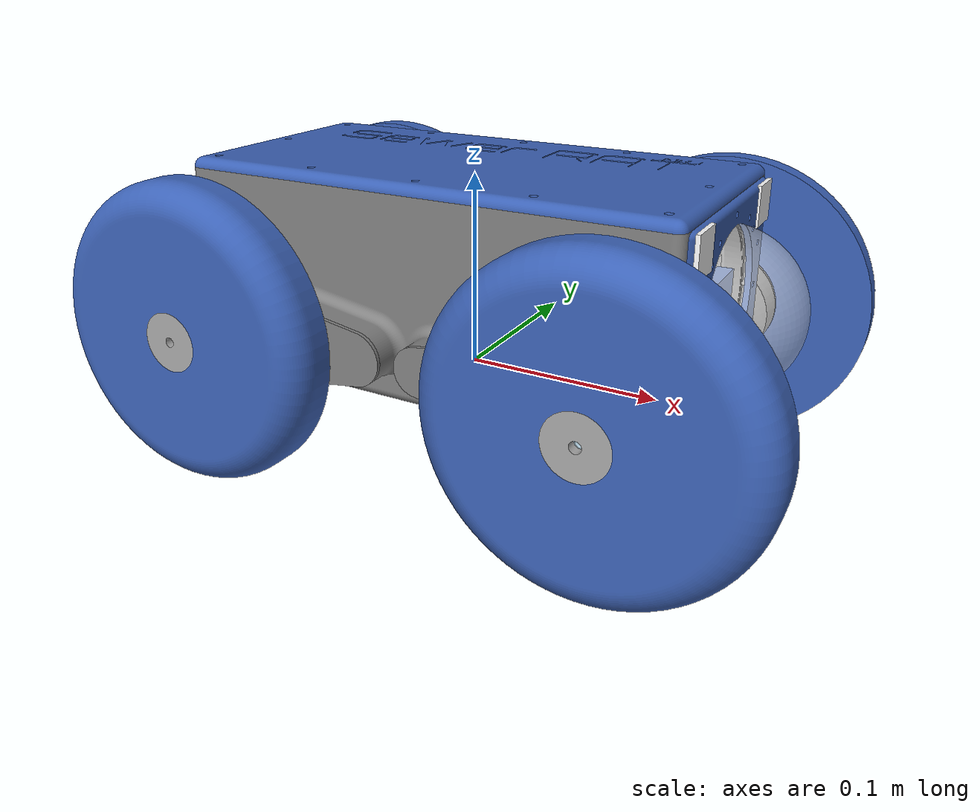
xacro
<?xml version="1.0" ?>

<robot name="inspection_bot" xmlns:xacro="http://www.ros.org/wiki/xacro">

  <xacro:include filename="$(find description)/urdf/ign.xacro" />
  <xacro:include filename="$(find description)/urdf/ign_ros2_control.xacro" />

  <link name="base_link">
    <inertial>
      <origin xyz="-0.00411556 1.05443e-07 0.0423144" rpy="0 0 0"/>
      <mass value="5.10018"/>
      <inertia ixx="0.0179618" ixy="6.87201e-06" ixz="-7.24689e-05" iyy="0.0363852" iyz="3.01745e-06" izz="0.042854"/>
    </inertial>
    <!-- Part wheel_cover -->
    <visual>
      <origin xyz="-0 0 0" rpy="0 0 0"/>
      <geometry>
        <mesh filename="file://$(find description)/meshes/wheel_cover.stl"/>
      </geometry>
      <material name="wheel_cover_material">
        <color rgba="0.647059 0.647059 0.647059 1"/>
      </material>
    </visual>
    <collision>
      <origin xyz="-0 0 0" rpy="0 0 0"/>
      <geometry>
        <mesh filename="file://$(find description)/meshes/wheel_cover.stl"/>
      </geometry>
    </collision>
    <!-- Part esc -->
    <visual>
      <origin xyz="-0 0 0" rpy="0 0 0"/>
      <geometry>
        <mesh filename="file://$(find description)/meshes/esc.stl"/>
      </geometry>
      <material name="esc_material">
        <color rgba="0.231373 0.380392 0.705882 1"/>
      </material>
    </visual>
    <collision>
      <origin xyz="-0 0 0" rpy="0 0 0"/>
      <geometry>
        <mesh filename="file://$(find description)/meshes/esc.stl"/>
      </geometry>
    </collision>
    <!-- Part 60teeth_2gt_5mm_pulley -->
    <visual>
      <origin xyz="-0 0 0" rpy="0 0 0"/>
      <geometry>
        <mesh filename="file://$(find description)/meshes/60teeth_2gt_5mm_pulley.stl"/>
      </geometry>
      <material name="60teeth_2gt_5mm_pulley_material">
        <color rgba="0.768627 0.886275 0.952941 1"/>
      </material>
    </visual>
    <collision>
      <origin xyz="-0 0 0" rpy="0 0 0"/>
      <geometry>
        <mesh filename="file://$(find description)/meshes/60teeth_2gt_5mm_pulley.stl"/>
      </geometry>
    </collision>
    <!-- Part esc_2 -->
    <visual>
      <origin xyz="-0 0 0" rpy="0 0 0"/>
      <geometry>
        <mesh filename="file://$(find description)/meshes/esc__2.stl"/>
      </geometry>
      <material name="esc_2_material">
        <color rgba="0.972549 0.529412 0.00392157 1"/>
      </material>
    </visual>
    <collision>
      <origin xyz="-0 0 0" rpy="0 0 0"/>
      <geometry>
        <mesh filename="file://$(find description)/meshes/esc__2.stl"/>
      </geometry>
    </collision>
    <!-- Part 20teeth_2gt_3mm_pulley -->
    <visual>
      <origin xyz="-0 0 0" rpy="0 0 0"/>
      <geometry>
        <mesh filename="file://$(find description)/meshes/20teeth_2gt_3mm_pulley.stl"/>
      </geometry>
      <material name="20teeth_2gt_3mm_pulley_material">
        <color rgba="0.917647 0.917647 0.917647 1"/>
      </material>
    </visual>
    <collision>
      <origin xyz="-0 0 0" rpy="0 0 0"/>
      <geometry>
        <mesh filename="file://$(find description)/meshes/20teeth_2gt_3mm_pulley.stl"/>
      </geometry>
    </collision>
    <!-- Part 60teeth_2gt_5mm_pulley_2 -->
    <visual>
      <origin xyz="-0 0 0" rpy="0 0 0"/>
      <geometry>
        <mesh filename="file://$(find description)/meshes/60teeth_2gt_5mm_pulley__2.stl"/>
      </geometry>
      <material name="60teeth_2gt_5mm_pulley_2_material">
        <color rgba="0.768627 0.886275 0.952941 1"/>
      </material>
    </visual>
    <collision>
      <origin xyz="-0 0 0" rpy="0 0 0"/>
      <geometry>
        <mesh filename="file://$(find description)/meshes/60teeth_2gt_5mm_pulley__2.stl"/>
      </geometry>
    </collision>
    <!-- Part pulley_cover_plate -->
    <visual>
      <origin xyz="-0 0 0" rpy="0 0 0"/>
      <geometry>
        <mesh filename="file://$(find description)/meshes/pulley_cover_plate.stl"/>
      </geometry>
      <material name="pulley_cover_plate_material">
        <color rgba="0.498039 0.498039 0.498039 1"/>
      </material>
    </visual>
    <collision>
      <origin xyz="-0 0 0" rpy="0 0 0"/>
      <geometry>
        <mesh filename="file://$(find description)/meshes/pulley_cover_plate.stl"/>
      </geometry>
    </collision>
    <!-- Part esc_3 -->
    <visual>
      <origin xyz="-0 0 0" rpy="0 0 0"/>
      <geometry>
        <mesh filename="file://$(find description)/meshes/esc__3.stl"/>
      </geometry>
      <material name="esc_3_material">
        <color rgba="0.768627 0.886275 0.952941 1"/>
      </material>
    </visual>
    <collision>
      <origin xyz="-0 0 0" rpy="0 0 0"/>
      <geometry>
        <mesh filename="file://$(find description)/meshes/esc__3.stl"/>
      </geometry>
    </collision>
    <!-- Part wheel_cover_2 -->
    <visual>
      <origin xyz="-0 0 0" rpy="0 0 0"/>
      <geometry>
        <mesh filename="file://$(find description)/meshes/wheel_cover__2.stl"/>
      </geometry>
      <material name="wheel_cover_2_material">
        <color rgba="0.647059 0.647059 0.647059 1"/>
      </material>
    </visual>
    <collision>
      <origin xyz="-0 0 0" rpy="0 0 0"/>
      <geometry>
        <mesh filename="file://$(find description)/meshes/wheel_cover__2.stl"/>
      </geometry>
    </collision>
    <!-- Part pulley_cover_plate_2 -->
    <visual>
      <origin xyz="-0 0 0" rpy="0 0 0"/>
      <geometry>
        <mesh filename="file://$(find description)/meshes/pulley_cover_plate__2.stl"/>
      </geometry>
      <material name="pulley_cover_plate_2_material">
        <color rgba="0.498039 0.498039 0.498039 1"/>
      </material>
    </visual>
    <collision>
      <origin xyz="-0 0 0" rpy="0 0 0"/>
      <geometry>
        <mesh filename="file://$(find description)/meshes/pulley_cover_plate__2.stl"/>
      </geometry>
    </collision>
    <!-- Part rear_right_motor -->
    <visual>
      <origin xyz="-0 0 0" rpy="0 0 0"/>
      <geometry>
        <mesh filename="file://$(find description)/meshes/rear_right_motor.stl"/>
      </geometry>
      <material name="rear_right_motor_material">
        <color rgba="0.647059 0.647059 0.647059 1"/>
      </material>
    </visual>
    <collision>
      <origin xyz="-0 0 0" rpy="0 0 0"/>
      <geometry>
        <mesh filename="file://$(find description)/meshes/rear_right_motor.stl"/>
      </geometry>
    </collision>
    <!-- Part pulley_cover_plate_3 -->
    <visual>
      <origin xyz="-0 0 0" rpy="0 0 0"/>
      <geometry>
        <mesh filename="file://$(find description)/meshes/pulley_cover_plate__3.stl"/>
      </geometry>
      <material name="pulley_cover_plate_3_material">
        <color rgba="0.498039 0.498039 0.498039 1"/>
      </material>
    </visual>
    <collision>
      <origin xyz="-0 0 0" rpy="0 0 0"/>
      <geometry>
        <mesh filename="file://$(find description)/meshes/pulley_cover_plate__3.stl"/>
      </geometry>
    </collision>
    <!-- Part 60teeth_2gt_5mm_pulley_3 -->
    <visual>
      <origin xyz="-0 0 0" rpy="0 0 0"/>
      <geometry>
        <mesh filename="file://$(find description)/meshes/60teeth_2gt_5mm_pulley__3.stl"/>
      </geometry>
      <material name="60teeth_2gt_5mm_pulley_3_material">
        <color rgba="0.972549 0.529412 0.00392157 1"/>
      </material>
    </visual>
    <collision>
      <origin xyz="-0 0 0" rpy="0 0 0"/>
      <geometry>
        <mesh filename="file://$(find description)/meshes/60teeth_2gt_5mm_pulley__3.stl"/>
      </geometry>
    </collision>
    <!-- Part pulleu_cover_plate -->
    <visual>
      <origin xyz="-0 0 0" rpy="0 0 0"/>
      <geometry>
        <mesh filename="file://$(find description)/meshes/pulleu_cover_plate.stl"/>
      </geometry>
      <material name="pulleu_cover_plate_material">
        <color rgba="0.498039 0.498039 0.498039 1"/>
      </material>
    </visual>
    <collision>
      <origin xyz="-0 0 0" rpy="0 0 0"/>
      <geometry>
        <mesh filename="file://$(find description)/meshes/pulleu_cover_plate.stl"/>
      </geometry>
    </collision>
    <!-- Part camera_dome -->
    <visual>
      <origin xyz="-0 0 0" rpy="0 0 0"/>
      <geometry>
        <mesh filename="file://$(find description)/meshes/camera_dome.stl"/>
      </geometry>
      <material name="camera_dome_material">
        <color rgba="0.901961 0.901961 0.901961 0.498039"/>
      </material>
    </visual>
    <collision>
      <origin xyz="-0 0 0" rpy="0 0 0"/>
      <geometry>
        <mesh filename="file://$(find description)/meshes/camera_dome.stl"/>
      </geometry>
    </collision>
    <!-- Part base_link -->
    <visual>
      <origin xyz="-0 0 0" rpy="0 0 0"/>
      <geometry>
        <mesh filename="file://$(find description)/meshes/base_link.stl"/>
      </geometry>
      <material name="base_link_material">
        <color rgba="0.498039 0.498039 0.498039 1"/>
      </material>
    </visual>
    <collision>
      <origin xyz="-0 0 0" rpy="0 0 0"/>
      <geometry>
        <mesh filename="file://$(find description)/meshes/base_link.stl"/>
      </geometry>
    </collision>
    <!-- Part 60teeth_2gt_5mm_pulley_4 -->
    <visual>
      <origin xyz="-0 0 0" rpy="0 0 0"/>
      <geometry>
        <mesh filename="file://$(find description)/meshes/60teeth_2gt_5mm_pulley__4.stl"/>
      </geometry>
      <material name="60teeth_2gt_5mm_pulley_4_material">
        <color rgba="0.972549 0.529412 0.00392157 1"/>
      </material>
    </visual>
    <collision>
      <origin xyz="-0 0 0" rpy="0 0 0"/>
      <geometry>
        <mesh filename="file://$(find description)/meshes/60teeth_2gt_5mm_pulley__4.stl"/>
      </geometry>
    </collision>
    <!-- Part lid -->
    <visual>
      <origin xyz="-0 0 0" rpy="0 0 0"/>
      <geometry>
        <mesh filename="file://$(find description)/meshes/lid.stl"/>
      </geometry>
      <material name="lid_material">
        <color rgba="0.231373 0.380392 0.705882 1"/>
      </material>
    </visual>
    <collision>
      <origin xyz="-0 0 0" rpy="0 0 0"/>
      <geometry>
        <mesh filename="file://$(find description)/meshes/lid.stl"/>
      </geometry>
    </collision>
    <!-- Part rear_left_motor -->
    <visual>
      <origin xyz="-0 0 0" rpy="0 0 0"/>
      <geometry>
        <mesh filename="file://$(find description)/meshes/rear_left_motor.stl"/>
      </geometry>
      <material name="rear_left_motor_material">
        <color rgba="0.917647 0.917647 0.917647 1"/>
      </material>
    </visual>
    <collision>
      <origin xyz="-0 0 0" rpy="0 0 0"/>
      <geometry>
        <mesh filename="file://$(find description)/meshes/rear_left_motor.stl"/>
      </geometry>
    </collision>
    <!-- Part front_left_motor -->
    <visual>
      <origin xyz="-0 0 0" rpy="0 0 0"/>
      <geometry>
        <mesh filename="file://$(find description)/meshes/front_left_motor.stl"/>
      </geometry>
      <material name="front_left_motor_material">
        <color rgba="0.768627 0.886275 0.952941 1"/>
      </material>
    </visual>
    <collision>
      <origin xyz="-0 0 0" rpy="0 0 0"/>
      <geometry>
        <mesh filename="file://$(find description)/meshes/front_left_motor.stl"/>
      </geometry>
    </collision>
    <!-- Part 20teeth_2gt_3mm_pulley_2 -->
    <visual>
      <origin xyz="-0 0 0" rpy="0 0 0"/>
      <geometry>
        <mesh filename="file://$(find description)/meshes/20teeth_2gt_3mm_pulley__2.stl"/>
      </geometry>
      <material name="20teeth_2gt_3mm_pulley_2_material">
        <color rgba="0.917647 0.917647 0.917647 1"/>
      </material>
    </visual>
    <collision>
      <origin xyz="-0 0 0" rpy="0 0 0"/>
      <geometry>
        <mesh filename="file://$(find description)/meshes/20teeth_2gt_3mm_pulley__2.stl"/>
      </geometry>
    </collision>
    <!-- Part cable_connector -->
    <visual>
      <origin xyz="-0 0 0" rpy="0 0 0"/>
      <geometry>
        <mesh filename="file://$(find description)/meshes/cable_connector.stl"/>
      </geometry>
      <material name="cable_connector_material">
        <color rgba="0.647059 0.647059 0.647059 1"/>
      </material>
    </visual>
    <collision>
      <origin xyz="-0 0 0" rpy="0 0 0"/>
      <geometry>
        <mesh filename="file://$(find description)/meshes/cable_connector.stl"/>
      </geometry>
    </collision>
    <!-- Part front_right_motor -->
    <visual>
      <origin xyz="-0 0 0" rpy="0 0 0"/>
      <geometry>
        <mesh filename="file://$(find description)/meshes/front_right_motor.stl"/>
      </geometry>
      <material name="front_right_motor_material">
        <color rgba="0.231373 0.380392 0.705882 1"/>
      </material>
    </visual>
    <collision>
      <origin xyz="-0 0 0" rpy="0 0 0"/>
      <geometry>
        <mesh filename="file://$(find description)/meshes/front_right_motor.stl"/>
      </geometry>
    </collision>
    <!-- Part wheel_cover_3 -->
    <visual>
      <origin xyz="-0 0 0" rpy="0 0 0"/>
      <geometry>
        <mesh filename="file://$(find description)/meshes/wheel_cover__3.stl"/>
      </geometry>
      <material name="wheel_cover_3_material">
        <color rgba="0.647059 0.647059 0.647059 1"/>
      </material>
    </visual>
    <collision>
      <origin xyz="-0 0 0" rpy="0 0 0"/>
      <geometry>
        <mesh filename="file://$(find description)/meshes/wheel_cover__3.stl"/>
      </geometry>
    </collision>
    <!-- Part wheel_cover_4 -->
    <visual>
      <origin xyz="-0 0 0" rpy="0 0 0"/>
      <geometry>
        <mesh filename="file://$(find description)/meshes/wheel_cover__4.stl"/>
      </geometry>
      <material name="wheel_cover_4_material">
        <color rgba="0.647059 0.647059 0.647059 1"/>
      </material>
    </visual>
    <collision>
      <origin xyz="-0 0 0" rpy="0 0 0"/>
      <geometry>
        <mesh filename="file://$(find description)/meshes/wheel_cover__4.stl"/>
      </geometry>
    </collision>
    <!-- Part 20teeth_2gt_3mm_pulley_3 -->
    <visual>
      <origin xyz="-0 0 0" rpy="0 0 0"/>
      <geometry>
        <mesh filename="file://$(find description)/meshes/20teeth_2gt_3mm_pulley__3.stl"/>
      </geometry>
      <material name="20teeth_2gt_3mm_pulley_3_material">
        <color rgba="0.231373 0.380392 0.705882 1"/>
      </material>
    </visual>
    <collision>
      <origin xyz="-0 0 0" rpy="0 0 0"/>
      <geometry>
        <mesh filename="file://$(find description)/meshes/20teeth_2gt_3mm_pulley__3.stl"/>
      </geometry>
    </collision>
    <!-- Part esc_4 -->
    <visual>
      <origin xyz="-0 0 0" rpy="0 0 0"/>
      <geometry>
        <mesh filename="file://$(find description)/meshes/esc__4.stl"/>
      </geometry>
      <material name="esc_4_material">
        <color rgba="0.917647 0.917647 0.917647 1"/>
      </material>
    </visual>
    <collision>
      <origin xyz="-0 0 0" rpy="0 0 0"/>
      <geometry>
        <mesh filename="file://$(find description)/meshes/esc__4.stl"/>
      </geometry>
    </collision>
    <!-- Part 20teeth_2gt_3mm_pulley_4 -->
    <visual>
      <origin xyz="-0 0 0" rpy="0 0 0"/>
      <geometry>
        <mesh filename="file://$(find description)/meshes/20teeth_2gt_3mm_pulley__4.stl"/>
      </geometry>
      <material name="20teeth_2gt_3mm_pulley_4_material">
        <color rgba="0.231373 0.380392 0.705882 1"/>
      </material>
    </visual>
    <collision>
      <origin xyz="-0 0 0" rpy="0 0 0"/>
      <geometry>
        <mesh filename="file://$(find description)/meshes/20teeth_2gt_3mm_pulley__4.stl"/>
      </geometry>
    </collision>
    <!-- Part air_fill_valve -->
    <visual>
      <origin xyz="-0 0 0" rpy="0 0 0"/>
      <geometry>
        <mesh filename="file://$(find description)/meshes/air_fill_valve.stl"/>
      </geometry>
      <material name="air_fill_valve_material">
        <color rgba="0.647059 0.647059 0.647059 1"/>
      </material>
    </visual>
    <collision>
      <origin xyz="-0 0 0" rpy="0 0 0"/>
      <geometry>
        <mesh filename="file://$(find description)/meshes/air_fill_valve.stl"/>
      </geometry>
    </collision>
  </link>
  <!-- Link 6in_wheel -->
  <link name="6in_wheel">
    <inertial>
      <origin xyz="3.90061e-07 -2.54296e-06 -0.0129745" rpy="0 0 0"/>
      <mass value="0.571285"/>
      <inertia ixx="0.00084212" ixy="-2.3e-11" ixz="-1.06e-10" iyy="0.00084212" iyz="6.89e-10" izz="0.00162728"/>
    </inertial>
    <!-- Part 6in_wheel -->
    <visual>
      <origin xyz="-0.1051 -0.0275 -0.1065" rpy="-1.5708 0 0"/>
      <geometry>
        <mesh filename="file://$(find description)/meshes/6in_wheel.stl"/>
      </geometry>
      <material name="6in_wheel_material">
        <color rgba="0.231373 0.380392 0.705882 1"/>
      </material>
    </visual>
    <collision>
      <origin xyz="-0.1051 -0.0275 -0.1065" rpy="-1.5708 0 0"/>
      <geometry>
        <mesh filename="file://$(find description)/meshes/6in_wheel.stl"/>
      </geometry>
    </collision>
  </link>
  <!-- Joint from base_link to 6in_wheel -->
  <joint name="fr" type="continuous">
    <origin xyz="0.105088 -0.1095 0.0276129" rpy="1.5708 0 0"/>
    <parent link="base_link"/>
    <child link="6in_wheel"/>
    <axis xyz="0 0 -1"/>
    <limit effort="50" velocity="10" lower="-3.141592653589793" upper="3.141592653589793"/>
    <dynamics damping="0.01" friction="0.01"/>
  </joint>
  <!-- Link 6in_wheel_2 -->
  <link name="6in_wheel_2">
    <inertial>
      <origin xyz="-5.27166e-06 -2.54296e-06 -0.0129745" rpy="0 0 0"/>
      <mass value="0.571285"/>
      <inertia ixx="0.00084212" ixy="3.09e-10" ixz="1.429e-09" iyy="0.000842119" iyz="6.89e-10" izz="0.00162728"/>
    </inertial>
    <!-- Part 6in_wheel_2 -->
    <visual>
      <origin xyz="0.1051 -0.0275 -0.1065" rpy="-1.5708 0 0"/>
      <geometry>
        <mesh filename="file://$(find description)/meshes/6in_wheel__2.stl"/>
      </geometry>
      <material name="6in_wheel_2_material">
        <color rgba="0.231373 0.380392 0.705882 1"/>
      </material>
    </visual>
    <collision>
      <origin xyz="0.1051 -0.0275 -0.1065" rpy="-1.5708 0 0"/>
      <geometry>
        <mesh filename="file://$(find description)/meshes/6in_wheel__2.stl"/>
      </geometry>
    </collision>
  </link>
  <!-- Joint from base_link to 6in_wheel_2 -->
  <joint name="br" type="continuous">
    <origin xyz="-0.1051 -0.1095 0.0274971" rpy="1.5708 0 0"/>
    <parent link="base_link"/>
    <child link="6in_wheel_2"/>
    <axis xyz="0 0 -1"/>
    <limit effort="50" velocity="10" lower="-3.141592653589793" upper="3.141592653589793"/>
    <dynamics damping="0.01" friction="0.01"/>
  </joint>
  <!-- Link 6in_wheel_3 -->
  <link name="6in_wheel_3">
    <inertial>
      <origin xyz="-1.9237e-07 -1.25413e-06 -0.0129745" rpy="0 0 0"/>
      <mass value="0.571285"/>
      <inertia ixx="0.00084212" ixy="2.3e-11" ixz="-1.06e-10" iyy="0.00084212" iyz="-6.89e-10" izz="0.00162728"/>
    </inertial>
    <!-- Part 6in_wheel_3 -->
    <visual>
      <origin xyz="-0.105101 0.0274962 -0.1065" rpy="1.5708 -0 0"/>
      <geometry>
        <mesh filename="file://$(find description)/meshes/6in_wheel__3.stl"/>
      </geometry>
      <material name="6in_wheel_3_material">
        <color rgba="0.231373 0.380392 0.705882 1"/>
      </material>
    </visual>
    <collision>
      <origin xyz="-0.105101 0.0274962 -0.1065" rpy="1.5708 -0 0"/>
      <geometry>
        <mesh filename="file://$(find description)/meshes/6in_wheel__3.stl"/>
      </geometry>
    </collision>
  </link>
  <!-- Joint from base_link to 6in_wheel_3 -->
  <joint name="fl" type="continuous">
    <origin xyz="0.105088 0.1095 0.0276129" rpy="-1.5708 0 -0"/>
    <parent link="base_link"/>
    <child link="6in_wheel_3"/>
    <axis xyz="0 0 1"/>
    <limit effort="50" velocity="10" lower="-3.141592653589793" upper="3.141592653589793"/>
    <dynamics damping="0.01" friction="0.01"/>
  </joint>
  <!-- Link 6in_wheel_4 -->
  <link name="6in_wheel_4">
    <inertial>
      <origin xyz="2.59986e-06 -1.25413e-06 -0.0129745" rpy="0 0 0"/>
      <mass value="0.571285"/>
      <inertia ixx="0.00084212" ixy="-3.09e-10" ixz="1.429e-09" iyy="0.000842119" iyz="-6.89e-10" izz="0.00162728"/>
    </inertial>
    <!-- Part 6in_wheel_4 -->
    <visual>
      <origin xyz="0.105108 0.0274962 -0.1065" rpy="1.5708 -0 0"/>
      <geometry>
        <mesh filename="file://$(find description)/meshes/6in_wheel__4.stl"/>
      </geometry>
      <material name="6in_wheel_4_material">
        <color rgba="0.231373 0.380392 0.705882 1"/>
      </material>
    </visual>
    <collision>
      <origin xyz="0.105108 0.0274962 -0.1065" rpy="1.5708 -0 0"/>
      <geometry>
        <mesh filename="file://$(find description)/meshes/6in_wheel__4.stl"/>
      </geometry>
    </collision>
  </link>
  <!-- Joint from base_link to 6in_wheel_4 -->
  <joint name="bl" type="continuous">
    <origin xyz="-0.1051 0.1095 0.0275" rpy="-1.5708 0 -0"/>
    <parent link="base_link"/>
    <child link="6in_wheel_4"/>
    <axis xyz="0 0 1"/>
    <limit effort="50" velocity="10" lower="-3.141592653589793" upper="3.141592653589793"/>
    <dynamics damping="0.01" friction="0.01"/>
  </joint>
  <!-- Link pan_and_tilt -->
  <link name="pan_and_tilt">
    <inertial>
      <origin xyz="0.0169854 0.000962923 -0.0137749" rpy="0 0 0"/>
      <mass value="0.0931715"/>
      <inertia ixx="2.17613e-05" ixy="1.04498e-06" ixz="1.91243e-06" iyy="2.26582e-05" iyz="-5.98382e-07" izz="2.66699e-05"/>
    </inertial>
    <!-- Part pan_and_tilt -->
    <visual>
      <origin xyz="-0.0875 0.000494185 -0.0708" rpy="0 -0 0"/>
      <geometry>
        <mesh filename="file://$(find description)/meshes/pan_and_tilt.stl"/>
      </geometry>
      <material name="pan_and_tilt_material">
        <color rgba="0.917647 0.917647 0.917647 1"/>
      </material>
    </visual>
    <collision>
      <origin xyz="-0.0875 0.000494185 -0.0708" rpy="0 -0 0"/>
      <geometry>
        <mesh filename="file://$(find description)/meshes/pan_and_tilt.stl"/>
      </geometry>
    </collision>
  </link>

  <!-- Joint from base_link to pan_and_tilt -->
  <joint name="pan" type="revolute">
    <origin xyz="0.0875 -0.000494185 0.0668" rpy="0 0 0"/>
    <parent link="base_link"/>
    <child link="pan_and_tilt"/>
    <axis xyz="0 0 -1"/>
    <limit effort="10" velocity="2" lower="-0.52" upper="0.52"/>
    <dynamics damping="0.1" friction="0.1"/>
  </joint>

  <link name="camera_link">
    <visual>
      <origin rpy="0 0 0" xyz="0 0 0" />
      <geometry>
        <box size="0.01 0.03 0.03" />
      </geometry>
      <material name="camera_link">
        <color rgba="0.231373 0.380392 0.705882 1"/>
      </material>
    </visual>
  </link>

  <!-- Camera mounted on pan-tilt -->
  <joint name="camera_joint" type="fixed">
    <parent link="pan_and_tilt"/>
    <child link="camera_link"/>

    <!-- Adjust these values to place camera correctly -->
    <origin xyz="0.035 0.0 -0.015" rpy="0 0 0"/>
  </joint>

  <link name="camera_optical_frame"/>

  <joint name="camera_optical_joint" type="fixed">
    <parent link="camera_link"/>
    <child link="camera_optical_frame"/>
    <origin xyz="0 0 0" rpy="-1.5708 0 -1.5708"/>
  </joint>

  <link name="light_fl">
    <visual>
      <geometry>
        <box size="0.02 0.002 0.02"/>
      </geometry>
      <material name="led_white">
        <color rgba="1 1 1 1"/>
      </material>
    </visual>
  </link>

  <link name="light_fr">
    <visual>
      <geometry>
        <box size="0.02 0.002 0.02"/>
      </geometry>
      <material name="led_white">
        <color rgba="1 1 1 1"/>
      </material>
    </visual>
  </link>

  <link name="light_bl">
    <visual>
      <geometry>
        <box size="0.02 0.002 0.02"/>
      </geometry>
      <material name="led_white">
        <color rgba="1 1 1 1"/>
      </material>
    </visual>
  </link>

  <link name="light_br">
    <visual>
      <geometry>
        <box size="0.02 0.002 0.02"/>
      </geometry>
      <material name="led_white">
        <color rgba="1 1 1 1"/>
      </material>
    </visual>
  </link>

  <!-- Link face_plate -->
  <link name="face_plate">
    <inertial>
      <origin xyz="5.2197e-08 0.0057711 -0.00161" rpy="0 0 0"/>
      <mass value="0.0382468"/>
      <inertia ixx="3.77276e-05" ixy="1.53e-10" ixz="-9e-12" iyy="6.16865e-05" iyz="-5.5269e-08" izz="9.9359e-05"/>
    </inertial>
    <!-- Part face_plate -->
    <visual>
      <origin xyz="0 -0.05095 -0.13" rpy="-1.5708 -1.5708 0"/>
      <geometry>
        <mesh filename="file://$(find description)/meshes/face_plate.stl"/>
      </geometry>
      <material name="face_plate_material">
        <color rgba="0.231373 0.380392 0.705882 1"/>
      </material>
    </visual>
    <collision>
      <origin xyz="0 -0.05095 -0.13" rpy="-1.5708 -1.5708 0"/>
      <geometry>
        <mesh filename="file://$(find description)/meshes/face_plate.stl"/>
      </geometry>
    </collision>
  </link>

  <!-- Front Left -->
  <joint name="light_fl_joint" type="fixed">
    <parent link="face_plate"/>
    <child link="light_fl"/>
    <origin xyz="0.047 0.04 0.0" rpy="1.57 0 0"/>
  </joint>

  <!-- Front Right -->
  <joint name="light_fr_joint" type="fixed">
    <parent link="face_plate"/>
    <child link="light_fr"/>
    <origin xyz="-0.047 0.04 0.0" rpy="1.57 0 0"/>
  </joint>

  <!-- Bottom Left -->
  <joint name="light_bl_joint" type="fixed">
    <parent link="face_plate"/>
    <child link="light_bl"/>
    <origin xyz="0.047 -0.035 0.0" rpy="1.57 0 0"/>
  </joint>

  <!-- Bottom Right -->
  <joint name="light_br_joint" type="fixed">
    <parent link="face_plate"/>
    <child link="light_br"/>
    <origin xyz="-0.047 -0.035 0.0" rpy="1.57 0 0"/>
  </joint>

  <!-- Joint from base_link to face_plate -->
  <joint name="face_plate_joint" type="fixed">
    <origin xyz="0.13 0.000319729 0.0506946" rpy="1.5708 -0 1.5708"/>
    <parent link="base_link"/>
    <child link="face_plate"/>
    <axis xyz="0 0 1"/>
    <limit effort="10" velocity="10"/>
  </joint>
</robot>
